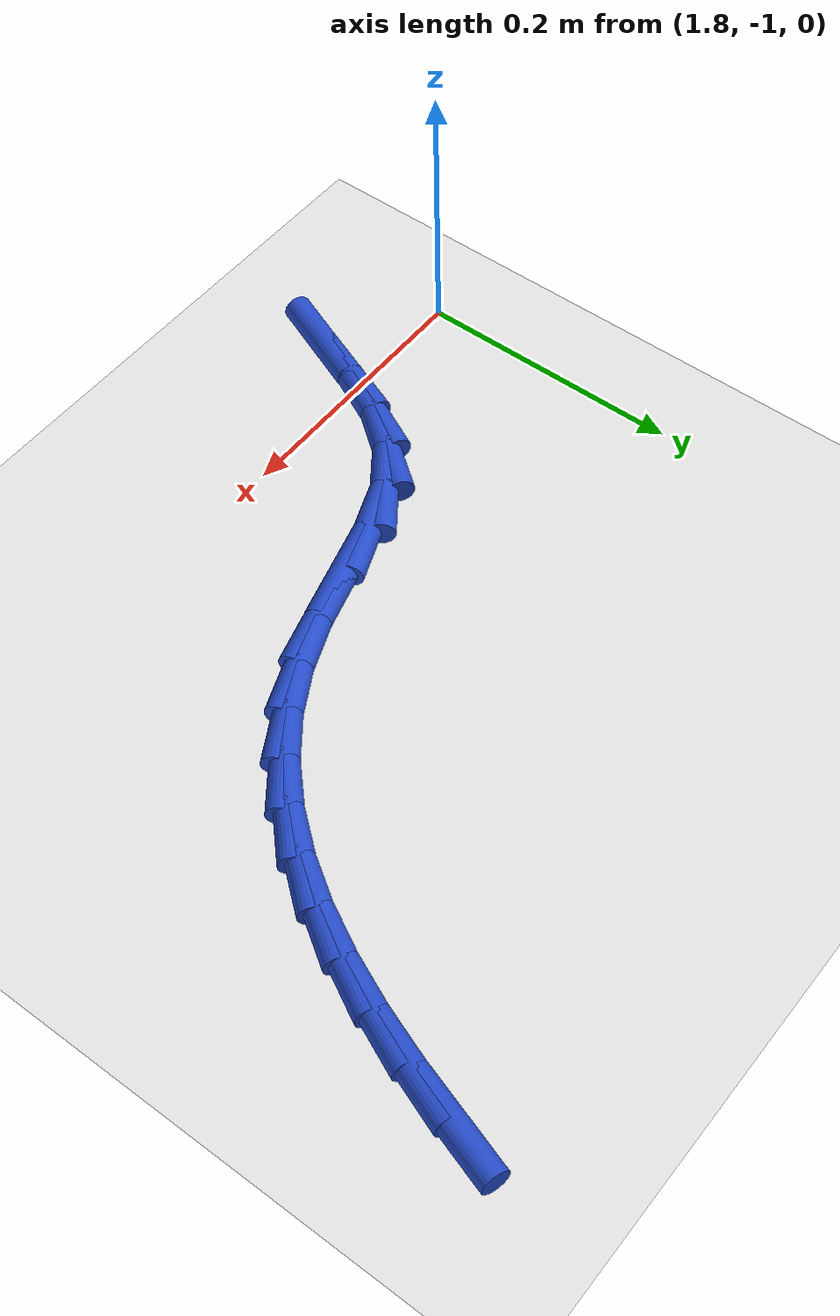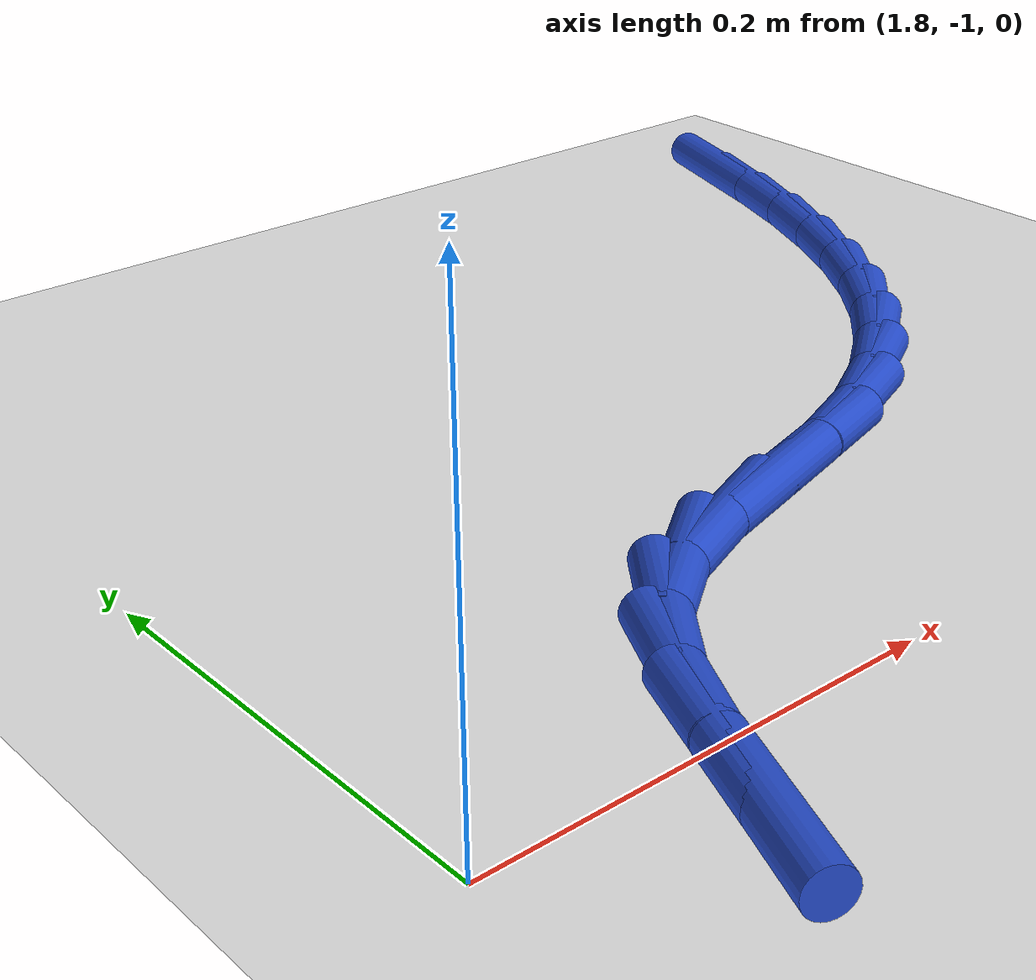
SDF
<sdf version="1.6">
 <world name="default">
  <model name="ground_plane">
   <static>1</static>
   <link name="link">
    <collision name="collision">
     <geometry><plane><normal>0 0 1</normal><size>100 100</size></plane></geometry>
     <surface><friction><ode><mu>100</mu><mu2>50</mu2></ode></friction></surface>
    </collision>
    <visual name="visual">
     <cast_shadows>0</cast_shadows>
     <geometry><plane><normal>0 0 1</normal><size>100 100</size></plane></geometry>
     <material>
      <script><uri>file://media/materials/scripts/gazebo.material</uri><name>Gazebo/WhiteGlow</name></script>
     </material>
    </visual>
   </link>
  </model>
  <model name="line">
   <link name="link_125">
    <pose>2.3033250355894124 -0.5994058290080677 0.01 0 1.57 1.2697675148306709</pose>
    <collision name="collision">
     <geometry><cylinder><radius>0.01</radius><length>0.08</length></cylinder></geometry>
    </collision>
    <visual name="visual">
     <material>
      <script><name>Gazebo/Blue</name><uri>file://media/materials/scripts/gazebo.material</uri></script>
     </material>
     <geometry><cylinder><radius>0.01</radius><length>0.08</length></cylinder></geometry>
    </visual>
   </link>
   <link name="link_126">
    <pose>2.290865844003244 -0.6395367199783359 0.01 0 1.57 1.2223424137326784</pose>
    <collision name="collision">
     <geometry><cylinder><radius>0.01</radius><length>0.08</length></cylinder></geometry>
    </collision>
    <visual name="visual">
     <material>
      <script><name>Gazebo/Blue</name><uri>file://media/materials/scripts/gazebo.material</uri></script>
     </material>
     <geometry><cylinder><radius>0.01</radius><length>0.08</length></cylinder></geometry>
    </visual>
   </link>
   <link name="link_127">
    <pose>2.2770076484813786 -0.6776844167180915 0.01 0 1.57 1.1621642848431213</pose>
    <collision name="collision">
     <geometry><cylinder><radius>0.01</radius><length>0.08</length></cylinder></geometry>
    </collision>
    <visual name="visual">
     <material>
      <script><name>Gazebo/Blue</name><uri>file://media/materials/scripts/gazebo.material</uri></script>
     </material>
     <geometry><cylinder><radius>0.01</radius><length>0.08</length></cylinder></geometry>
    </visual>
   </link>
   <link name="link_128">
    <pose>2.2614461297076454 -0.7136227778598995 0.01 0 1.57 1.0878139726791813</pose>
    <collision name="collision">
     <geometry><cylinder><radius>0.01</radius><length>0.08</length></cylinder></geometry>
    </collision>
    <visual name="visual">
     <material>
      <script><name>Gazebo/Blue</name><uri>file://media/materials/scripts/gazebo.material</uri></script>
     </material>
     <geometry><cylinder><radius>0.01</radius><length>0.08</length></cylinder></geometry>
    </visual>
   </link>
   <link name="link_129">
    <pose>2.243876968365873 -0.7471256620363245 0.01 0 1.57 0.9982072956733989</pose>
    <collision name="collision">
     <geometry><cylinder><radius>0.01</radius><length>0.08</length></cylinder></geometry>
    </collision>
    <visual name="visual">
     <material>
      <script><name>Gazebo/Blue</name><uri>file://media/materials/scripts/gazebo.material</uri></script>
     </material>
     <geometry><cylinder><radius>0.01</radius><length>0.08</length></cylinder></geometry>
    </visual>
   </link>
   <link name="link_130">
    <pose>2.2239958451398905 -0.7779669278799324 0.01 0 1.57 0.893126223767206</pose>
    <collision name="collision">
     <geometry><cylinder><radius>0.01</radius><length>0.08</length></cylinder></geometry>
    </collision>
    <visual name="visual">
     <material>
      <script><name>Gazebo/Blue</name><uri>file://media/materials/scripts/gazebo.material</uri></script>
     </material>
     <geometry><cylinder><radius>0.01</radius><length>0.08</length></cylinder></geometry>
    </visual>
   </link>
   <link name="link_131">
    <pose>2.2014984407135265 -0.8059204340232875 0.01 0 1.57 0.7738899692619551</pose>
    <collision name="collision">
     <geometry><cylinder><radius>0.01</radius><length>0.08</length></cylinder></geometry>
    </collision>
    <visual name="visual">
     <material>
      <script><name>Gazebo/Blue</name><uri>file://media/materials/scripts/gazebo.material</uri></script>
     </material>
     <geometry><cylinder><radius>0.01</radius><length>0.08</length></cylinder></geometry>
    </visual>
   </link>
   <link name="link_132">
    <pose>2.17608043577061 -0.8307600390989556 0.01 0 1.57 0.6438890916023512</pose>
    <collision name="collision">
     <geometry><cylinder><radius>0.01</radius><length>0.08</length></cylinder></geometry>
    </collision>
    <visual name="visual">
     <material>
      <script><name>Gazebo/Blue</name><uri>file://media/materials/scripts/gazebo.material</uri></script>
     </material>
     <geometry><cylinder><radius>0.01</radius><length>0.08</length></cylinder></geometry>
    </visual>
   </link>
   <link name="link_133">
    <pose>2.1474375109949713 -0.8522596017395008 0.01 0 1.57 0.5085214112034492</pose>
    <collision name="collision">
     <geometry><cylinder><radius>0.01</radius><length>0.08</length></cylinder></geometry>
    </collision>
    <visual name="visual">
     <material>
      <script><name>Gazebo/Blue</name><uri>file://media/materials/scripts/gazebo.material</uri></script>
     </material>
     <geometry><cylinder><radius>0.01</radius><length>0.08</length></cylinder></geometry>
    </visual>
   </link>
   <link name="link_134">
    <pose>2.115265347070438 -0.8701929805774886 0.01 0 1.57 0.3742452434379217</pose>
    <collision name="collision">
     <geometry><cylinder><radius>0.01</radius><length>0.08</length></cylinder></geometry>
    </collision>
    <visual name="visual">
     <material>
      <script><name>Gazebo/Blue</name><uri>file://media/materials/scripts/gazebo.material</uri></script>
     </material>
     <geometry><cylinder><radius>0.01</radius><length>0.08</length></cylinder></geometry>
    </visual>
   </link>
   <link name="link_135">
    <pose>2.0792599047951645 -0.8843343029080623 0.01 0 1.57 0.2707549621338131</pose>
    <collision name="collision">
     <geometry><cylinder><radius>0.01</radius><length>0.08</length></cylinder></geometry>
    </collision>
    <visual name="visual">
     <material>
      <script><name>Gazebo/Blue</name><uri>file://media/materials/scripts/gazebo.material</uri></script>
     </material>
     <geometry><cylinder><radius>0.01</radius><length>0.08</length></cylinder></geometry>
    </visual>
   </link>
   <link name="link_136">
    <pose>2.03994118149755 -0.8952480439641408 0.01 0 1.57 0.2665330188805306</pose>
    <collision name="collision">
     <geometry><cylinder><radius>0.01</radius><length>0.08</length></cylinder></geometry>
    </collision>
    <visual name="visual">
     <material>
      <script><name>Gazebo/Blue</name><uri>file://media/materials/scripts/gazebo.material</uri></script>
     </material>
     <geometry><cylinder><radius>0.01</radius><length>0.08</length></cylinder></geometry>
    </visual>
   </link>
   <link name="link_137">
    <pose>2.000464551358035 -0.9060263152955041 0.01 0 1.57 0.3770915773801239</pose>
    <collision name="collision">
     <geometry><cylinder><radius>0.01</radius><length>0.08</length></cylinder></geometry>
    </collision>
    <visual name="visual">
     <material>
      <script><name>Gazebo/Blue</name><uri>file://media/materials/scripts/gazebo.material</uri></script>
     </material>
     <geometry><cylinder><radius>0.01</radius><length>0.08</length></cylinder></geometry>
    </visual>
   </link>
   <link name="link_138">
    <pose>1.9645111179713521 -0.9202654647851116 0.01 0 1.57 0.6320862818828478</pose>
    <collision name="collision">
     <geometry><cylinder><radius>0.01</radius><length>0.08</length></cylinder></geometry>
    </collision>
    <visual name="visual">
     <material>
      <script><name>Gazebo/Blue</name><uri>file://media/materials/scripts/gazebo.material</uri></script>
     </material>
     <geometry><cylinder><radius>0.01</radius><length>0.08</length></cylinder></geometry>
    </visual>
   </link>
   <link name="link_139">
    <pose>1.9356082158414663 -0.9414314926483816 0.01 0 1.57 0.9289551560297408</pose>
    <collision name="collision">
     <geometry><cylinder><radius>0.01</radius><length>0.08</length></cylinder></geometry>
    </collision>
    <visual name="visual">
     <material>
      <script><name>Gazebo/Blue</name><uri>file://media/materials/scripts/gazebo.material</uri></script>
     </material>
     <geometry><cylinder><radius>0.01</radius><length>0.08</length></cylinder></geometry>
    </visual>
   </link>
   <link name="link_140">
    <pose>1.9140617684165966 -0.9702596590333289 0.01 0 1.57 1.115924121026406</pose>
    <collision name="collision">
     <geometry><cylinder><radius>0.01</radius><length>0.08</length></cylinder></geometry>
    </collision>
    <visual name="visual">
     <material>
      <script><name>Gazebo/Blue</name><uri>file://media/materials/scripts/gazebo.material</uri></script>
     </material>
     <geometry><cylinder><radius>0.01</radius><length>0.08</length></cylinder></geometry>
    </visual>
   </link>
   <link name="link_141">
    <pose>1.8971222782035269 -1.0048951912597481 0.01 0 1.57 1.194593673109617</pose>
    <collision name="collision">
     <geometry><cylinder><radius>0.01</radius><length>0.08</length></cylinder></geometry>
    </collision>
    <visual name="visual">
     <material>
      <script><name>Gazebo/Blue</name><uri>file://media/materials/scripts/gazebo.material</uri></script>
     </material>
     <geometry><cylinder><radius>0.01</radius><length>0.08</length></cylinder></geometry>
    </visual>
   </link>
   <link name="link_142">
    <pose>1.8819197057690757 -1.043381135119037 0.01 0 1.57 1.186369288643366</pose>
    <collision name="collision">
     <geometry><cylinder><radius>0.01</radius><length>0.08</length></cylinder></geometry>
    </collision>
    <visual name="visual">
     <material>
      <script><name>Gazebo/Blue</name><uri>file://media/materials/scripts/gazebo.material</uri></script>
     </material>
     <geometry><cylinder><radius>0.01</radius><length>0.08</length></cylinder></geometry>
    </visual>
   </link>
  </model>
 </world>
</sdf>
